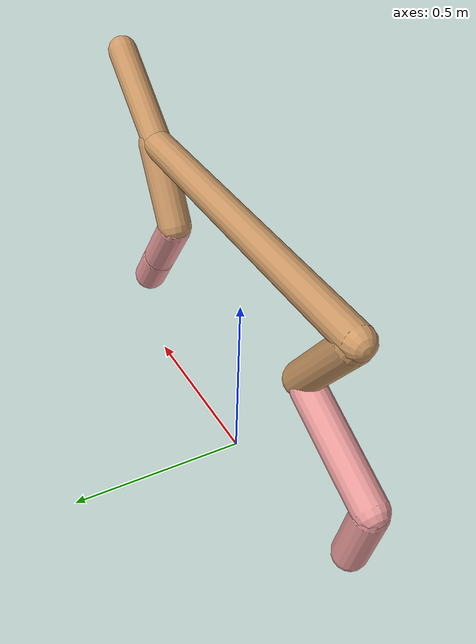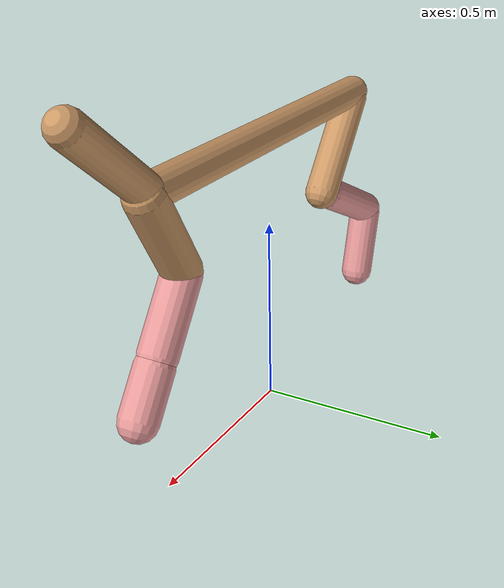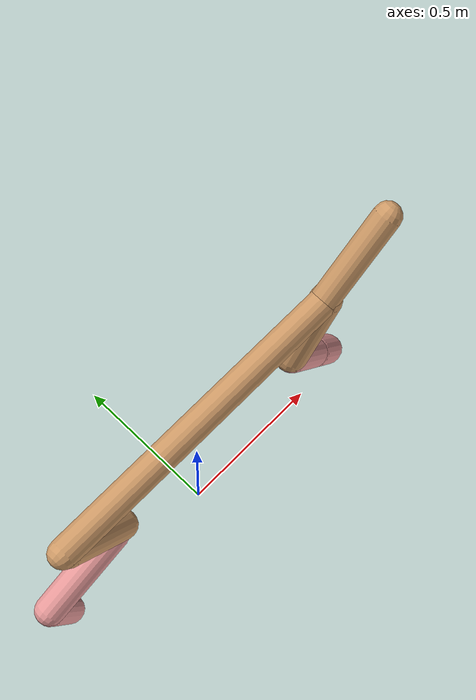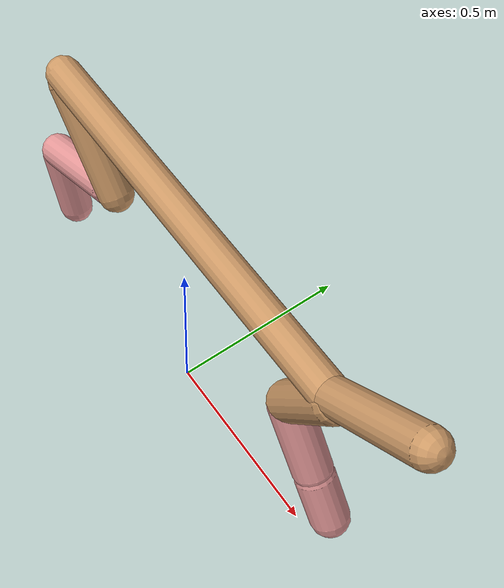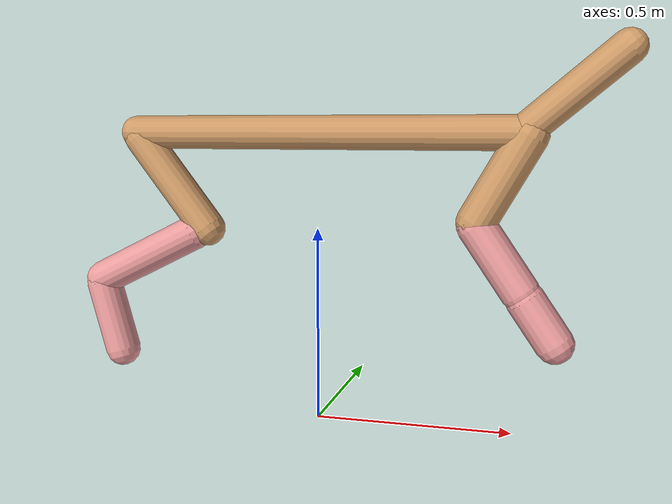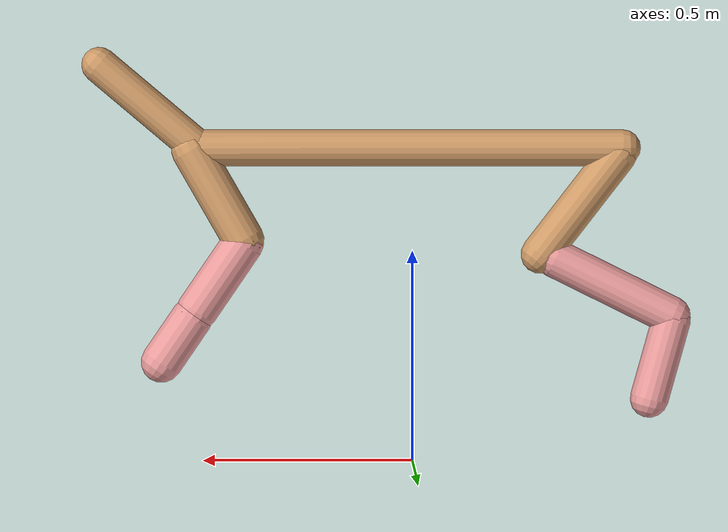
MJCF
<mujoco model="cheetah">
  <compiler angle="radian" coordinate="local" inertiafromgeom="true" settotalmass="14" />
  <default>
    <joint armature=".1" damping=".01" limited="true" solimplimit="0 .8 .03" solreflimit=".02 1" stiffness="8" />
    <geom conaffinity="0" condim="3" contype="1" friction="0.8 .1 .1" rgba="0.8 0.6 .4 1" solimp="0.0 0.8 0.01" solref="0.02 1" />
    <motor ctrllimited="true" ctrlrange="-1 1" />
  </default>
  <size nstack="300000" nuser_geom="1" />
  <option gravity="0 0 -9.81" timestep="0.01" />
  <worldbody>
    <body name="torso" pos="0.0 0.0 0.746245575132453">
      <joint armature="0" axis="1 0 0" damping="0" limited="false" name="ignorex" pos="0 0 0" stiffness="0" type="slide" />
      <joint armature="0" axis="0 0 1" damping="0" limited="false" name="ignorez" pos="0 0 0" stiffness="0" type="slide" />
      <joint armature="0" axis="0 1 0" damping="0" limited="false" name="ignorey" pos="0 0 0" stiffness="0" type="hinge" />
      <geom fromto="-0.5 0.0 0.0 0.5284059267181255 0.0 0.0" name="torso" size="0.0436284340976459" type="capsule" />
      <geom axisangle="0 1 0 .87" name="head" pos="0.6284059267181256 0.0 0.1" size="0.042643916534425494 0.15" type="capsule" />

      <body name="bthigh" pos="-.5 0 0">
        <joint axis="0 1 0" damping="6" name="bthigh" pos="0 0 0" range="-.52 1.05" stiffness="240" type="hinge" />
        <geom axisangle="0 1 0 -3.8" name="bthigh" pos="0.103464814911857 0.0 -0.13450425938541408" size="0.04634961293695472 0.1506827189781404" type="capsule" />
        <body name="bshin" pos="0.16692962982371398 0.0 -0.25900851877082814">
          <joint axis="0 1 0" damping="4.5" name="bshin" pos="0 0 0" range="-.785 .785" stiffness="180" type="hinge" />
          <geom axisangle="0 1 0 -2.03" name="bshin" pos="-0.14525804659261385 0.0 -0.07262902329630692" rgba="0.9 0.6 0.6 1" size="0.04634961293695472 0.15587867480497283" type="capsule" />
          <body name="bfoot" pos="-0.2905160931852277 0.0 -0.14525804659261385">
            <joint axis="0 1 0" damping="3" name="bfoot" pos="0 0 0" range="-.4 .785" stiffness="120" type="hinge" />
            <geom axisangle="0 1 0 -.27" name="bfoot" pos="0.031088501460551872 0.0 -0.1005194880557844" rgba="0.9 0.6 0.6 1" size="0.04634961293695472 0.09768396954444965" type="capsule" />
            <inertial mass="10" />
          </body>
        </body>
      </body>
      <body name="fthigh" pos="0.5284059267181256 0.0 0.0">
        <joint axis="0 1 0" damping="4.5" name="fthigh" pos="0 0 0" range="-1.5 0.8" stiffness="180" type="hinge" />
        <geom axisangle="0 1 0 .52" name="fthigh" pos="-0.06512036512765929 0.0 -0.1116349116474159" size="0.04930096075488821 0.12331570654957721" type="capsule" />
        <body name="fshin" pos="-0.13024073025531857 0.0 -0.2232698232948318">
          <joint axis="0 1 0" damping="3" name="fshin" pos="0 0 0" range="-1.2 1.1" stiffness="120" type="hinge" />
          <geom axisangle="0 1 0 -.6" name="fshin" pos="0.06048100295035181 0.0 -0.08374292716202558" rgba="0.9 0.6 0.6 1" size="0.04930096075488821 0.0982816909342495" type="capsule" />
          <body name="ffoot" pos="0.12096200590070362 0.0 -0.16748585432405116">
            <joint axis="0 1 0" damping="1.5" name="ffoot" pos="0 0 0" range="-3.1 -0.3" stiffness="60" type="hinge" />
            <geom axisangle="0 1 0 -.6" name="ffoot" pos="0.04224376042114541 0.0 -0.06571251621067065" rgba="0.9 0.6 0.6 1" size="0.04930096075488821 0.0649030034471459" type="capsule" />
            <inertial mass="10" />
          </body>
        </body>
      </body>
    </body>
  </worldbody>
  <actuator>
    <motor gear="120" joint="bthigh" name="bthigh" />
    <motor gear="90" joint="bshin" name="bshin" />
    <motor gear="60" joint="bfoot" name="bfoot" />
    <motor gear="120" joint="fthigh" name="fthigh" />
    <motor gear="60" joint="fshin" name="fshin" />
    <motor gear="30" joint="ffoot" name="ffoot" />
  </actuator>
</mujoco>
